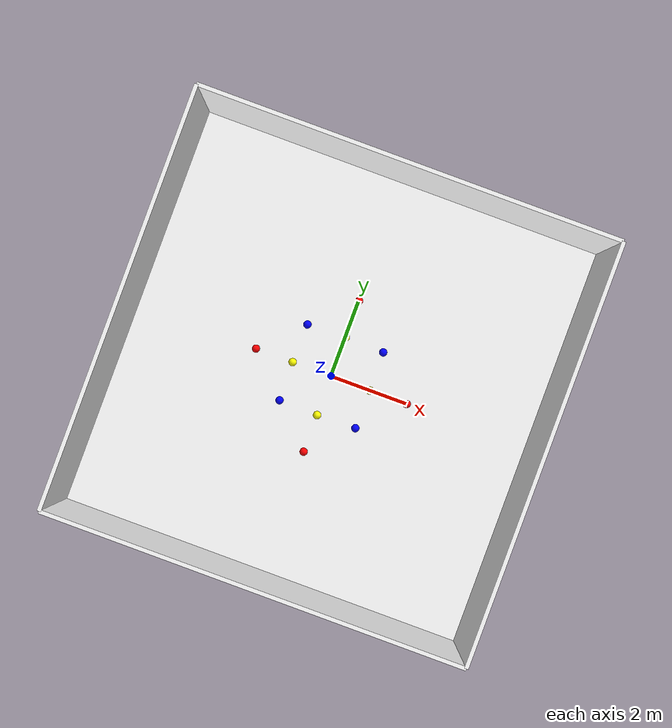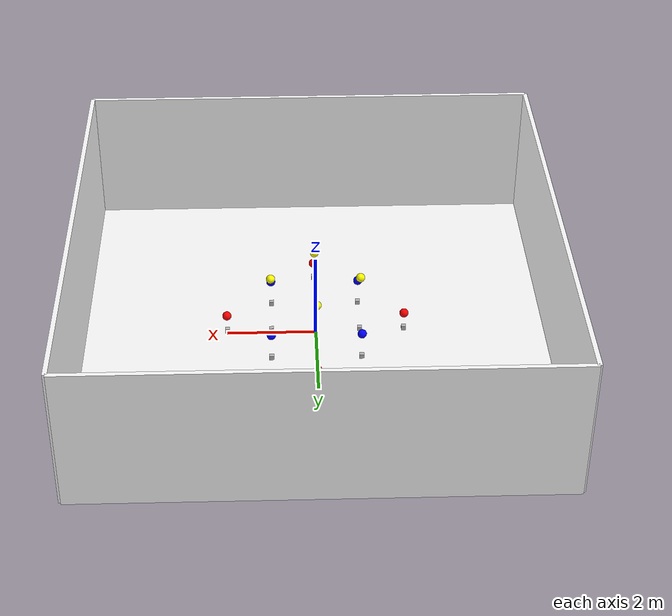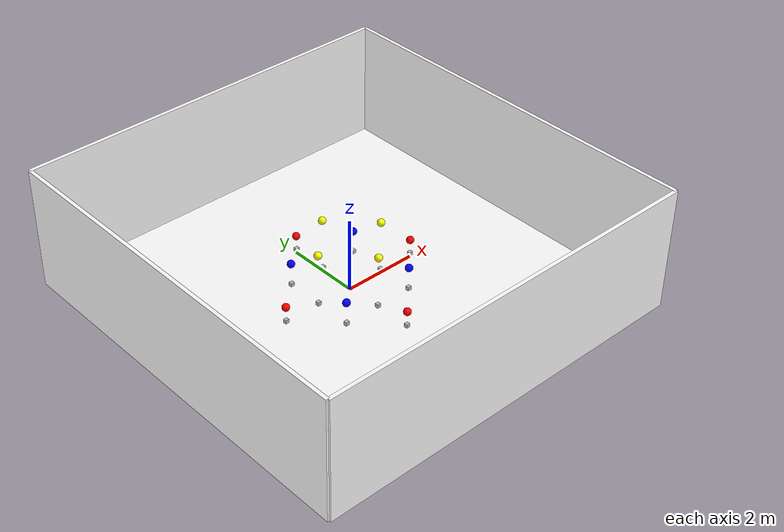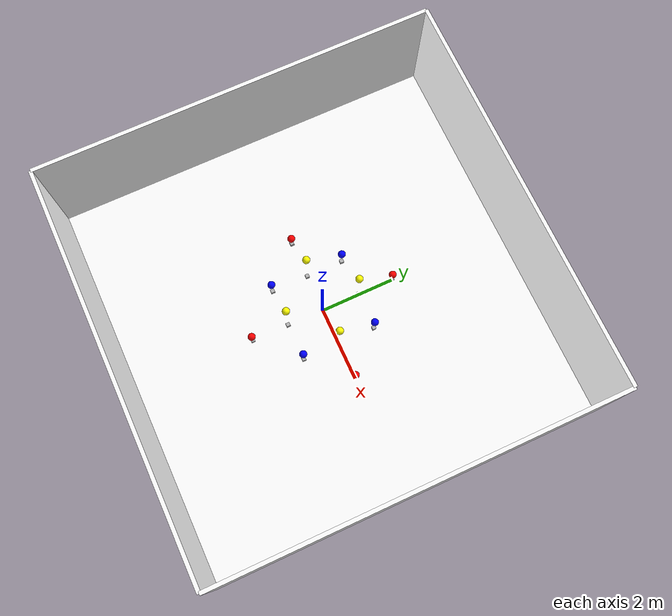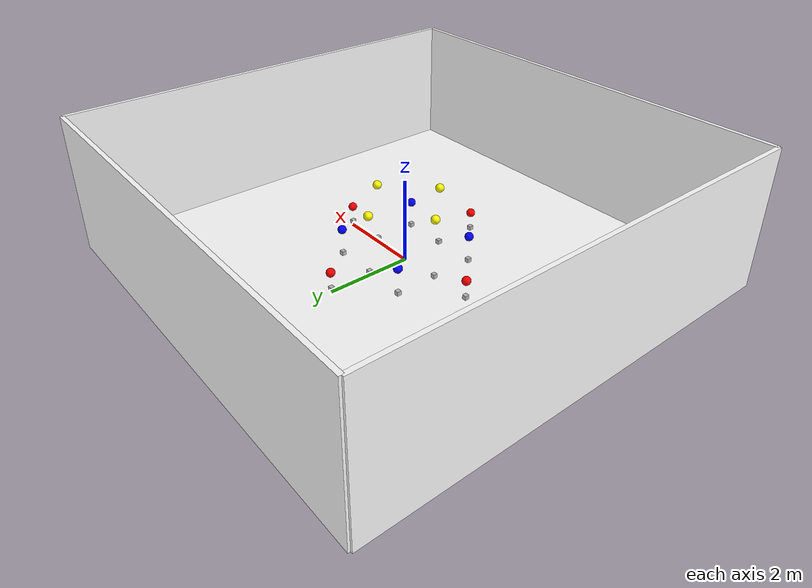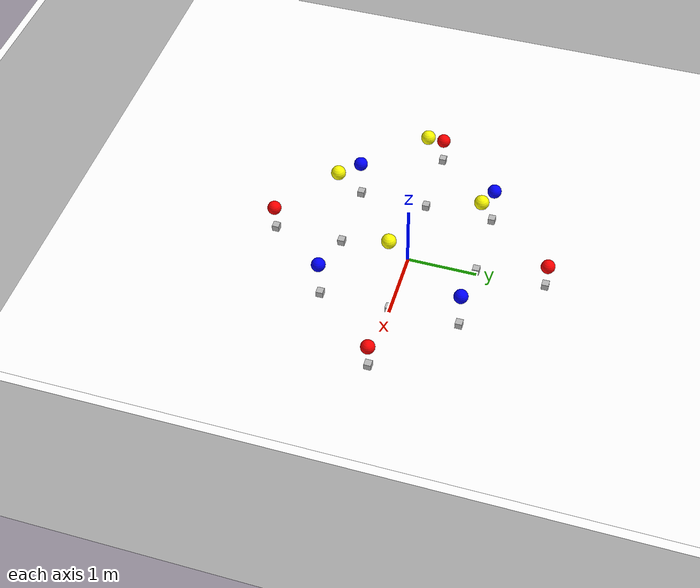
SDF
<sdf version="1.6">
 <world name="easys_world">
  <scene><ambient>0.0 1.0 1.0</ambient><background>0.0 0.7 0.8</background></scene>
  <physics name="1ms" type="ode">
   <max_step_size>0.001</max_step_size>
   <real_time_factor>1.0</real_time_factor>
  </physics>
  <plugin filename="gz-sim-physics-system" name="gz::sim::systems::Physics"/>
  <plugin filename="gz-sim-user-commands-system" name="gz::sim::systems::UserCommands"/>
  <plugin filename="gz-sim-scene-broadcaster-system" name="gz::sim::systems::SceneBroadcaster"/>
  <plugin filename="gz-sim-buoyancy-system" name="gz::sim::systems::Buoyancy">
   <uniform_fluid_density>1000</uniform_fluid_density>
  </plugin>
  <light type="directional" name="sun">
   <pose>0 0 10 0 0 0</pose>
   <diffuse>1 1 1 1</diffuse>
   <specular>0.5 0.5 0.5 1</specular>
   <attenuation>
    <range>1000</range>
    <constant>0.9</constant>
    <linear>0.01</linear>
    <quadratic>0.001</quadratic>
   </attenuation>
   <direction>-0.5 0.1 -0.9</direction>
  </light>
  <model name="ground_plane">
   <static>true</static>
   <link name="link">
    <collision name="collision">
     <geometry><plane><normal>0.0 0.0 1</normal><size>1 1</size></plane></geometry>
    </collision>
   </link>
  </model>
  <include><uri>model://jamstec_pool.sdf</uri><static>true</static></include>
  <include><uri>model://balloons.sdf</uri></include>
 </world>
</sdf>

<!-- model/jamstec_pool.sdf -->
<sdf version="1.6">
  <model name="jamstec_pool">
    <include>
      <uri>model://pool_wall.sdf</uri>
      <static>true</static>
      <pose>5.25 0 0 0 0 1.57</pose>
      <name>pool_wall_n</name>
    </include>
    <include>
      <uri>model://pool_wall.sdf</uri>
      <static>true</static>
      <pose>-5.25 0 0 0 0 1.57</pose>
      <name>pool_wall_s</name>
    </include>
    <include>
      <uri>model://pool_wall.sdf</uri>
      <static>true</static>
      <pose>0 5.25 0 0 0 0</pose>
      <name>pool_wall_e</name>
    </include>
    <include>
      <uri>model://pool_wall.sdf</uri>
      <static>true</static>
      <pose>0 -5.25 0 0 0 0</pose>
      <name>pool_wall_w</name>
    </include>

    <link name="pool_grand_link">
      <pose>0.0 0 -0.05 0.0 0.0 0.0</pose>
      <collision name="wall_collision">
          <geometry>
            <box>
                <size>10.5 10.5 0.1</size>
            </box>
          </geometry>
      </collision>
      <visual name="pool_grand_visual">
        <geometry>
            <box>
                <size>10.5 10.5 0.1</size>
            </box>
        </geometry>
        <material>
          <diffuse>1.0 1.0 1.0</diffuse>
          <specular>1.0 1.0 1.0</specular>
          <pbr>
            <metal>
              <albedo_map>material/pool_grand.png</albedo_map>
              <normal_map>material/pool_grand.png</normal_map>
              <metalness_map>material/pool_grand.png</metalness_map>
              <roughness_map>material/pool_grand.png</roughness_map>
            </metal>
          </pbr>
          <script>
            <uri>material/</uri>
            <name>PoolGrandMaterial</name>
            <scale>1.0 0.1</scale>
          </script>
        </material>
      </visual>
    </link>
  </model>
</sdf>

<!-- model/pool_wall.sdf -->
<sdf version="1.6">
  <model name="pool_wall">
    <!-- weight -->
    <link name="pool_wall_link">
      <pose>0.0 0 1.515 0.0 0.0 0.0</pose>
      <collision name="wall_collision">
          <geometry>
            <box>
                <size>10.5 0.1 3.3</size>
            </box>
          </geometry>
      </collision>
      <visual name="pool_wall_visual">
        <geometry>
            <box>
                <size>10.5 0.1 3.3</size>
            </box>
        </geometry>
        <material>
          <diffuse>1.0 1.0 1.0</diffuse>
          <specular>1.0 1.0 1.0</specular>
          <pbr>
            <metal>
              <albedo_map>material/pool_wall.png</albedo_map>
              <normal_map>material/pool_wall.png</normal_map>
              <metalness_map>material/pool_wall.png</metalness_map>
              <roughness_map>material/pool_wall.png</roughness_map>
            </metal>
          </pbr>
          <script>
            <uri>material/</uri>
            <name>PoolWallMaterial</name>
            <scale>1.0 0.1</scale>
          </script>
        </material>
      </visual>
    </link>
  </model>
</sdf>

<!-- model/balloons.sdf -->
<sdf version="1.6">
  <model name="balloons">
    <!--yellow 1.5m 10point-->
    <include>
      <uri>model://balloon_yellow.sdf</uri>
      <pose>0 -1 0 0 0 0</pose>
      <name>balloon_yellow1</name>
    </include>
    <include>
      <uri>model://balloon_yellow.sdf</uri>
      <pose>0 1 0 0 0 0</pose>
      <name>balloon_yellow2</name>
    </include>
    <include>
      <uri>model://balloon_yellow.sdf</uri>
      <pose>1 0 0 0 0 0</pose>
      <name>balloon_yellow3</name>
    </include>
    <include>
      <uri>model://balloon_yellow.sdf</uri>
      <pose>-1 0 0 0 0 0</pose>
      <name>balloon_yellow4</name>
    </include>

    <!--blue 0.7m -10point-->
    <include>
      <uri>model://balloon_blue.sdf</uri>
      <pose>1 1 0 0 0 0</pose>
      <name>balloon_blue1</name>
    </include>
    <include>
      <uri>model://balloon_blue.sdf</uri>
      <pose>-1 1 0 0 0 0</pose>
      <name>balloon_blue2</name>
    </include>
    <include>
      <uri>model://balloon_blue.sdf</uri>
      <pose>1 -1 0 0 0 0</pose>
      <name>balloon_blue3</name>
    </include>
    <include>
      <uri>model://balloon_blue.sdf</uri>
      <pose>-1 -1 0 0 0 0</pose>
      <name>balloon_blue4</name>
    </include>

    <!--red 0.5m 30point-->
    <include>
      <uri>model://balloon_red.sdf</uri>
      <pose>2 0 0 0 0 0</pose>
      <name>balloon_red1</name>
    </include>
    <include>
      <uri>model://balloon_red.sdf</uri>
      <pose>-2 0 0 0 0 0</pose>
      <name>balloon_red2</name>
    </include>
    <include>
      <uri>model://balloon_red.sdf</uri>
      <pose>0 2 0 0 0 0</pose>
      <name>balloon_red3</name>
    </include>
    <include>
      <uri>model://balloon_red.sdf</uri>
      <pose>0 -2 0 0 0 0</pose>
      <name>balloon_red4</name>
    </include>
  </model>
</sdf>

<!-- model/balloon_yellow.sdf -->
<sdf version="1.6">
  <model name="balloon">
    <!-- balloon -->
    <link name="balloon_link">
      <pose>0.0 0.0 1.5 0.0 0.0 0.0</pose>
      <collision name="collision">
          <geometry>
            <sphere>
              <radius>0.1</radius>
            </sphere>
          </geometry>
      </collision>
      <inertial>
        <mass>0.1</mass>
        <inertia>
            <ixx>1.000000</ixx>
            <ixy>0</ixy>
            <ixz>0</ixz>
            <iyy>1.0</iyy>
            <iyz>0</iyz>
            <izz>1.0</izz>
        </inertia>
      </inertial>
      <visual name="balloon_visual">
        <geometry>
            <sphere>
              <radius>0.1</radius>
            </sphere>
        </geometry>
        <material>
          <ambient>0.9 0.9 0.9 1</ambient>
          <diffuse>1.0 1.0 0.0 1</diffuse>
          <specular>0 0 0 0</specular>
          <emissive>0 0 0 1</emissive>
        </material>
      </visual>
    </link>

    <!-- weight -->
    <link name="weight_link">
      <pose>0.0 0.0 0.1 0.0 0.0 0.0</pose>
      <collision name="collision">
          <geometry>
            <box>
                <size>0.1 0.1 0.1</size>
            </box>
          </geometry>
      </collision>
      <inertial>
        <mass>50.0</mass>
        <inertia>
            <ixx>1.000000</ixx>
            <ixy>0</ixy>
            <ixz>0</ixz>
            <iyy>1.0</iyy>
            <iyz>0</iyz>
            <izz>1.0</izz>
        </inertia>
      </inertial>
      <visual name="weight_visual">
        <geometry>
            <box>
                <size>0.1 0.1 0.1</size>
            </box>
        </geometry>
      </visual>
    </link>

    <!-- balloon-weight joint -->
    <joint name="balloon_joint" type="fixed">
      <parent>weight_link</parent>
      <child>balloon_link</child>
      <pose>0 0 0 0 0 0</pose>
      <axis>
        <xyz>1 0 0</xyz>
        <limit>
            <lower>-1e+12</lower>
            <upper>1e+12</upper>
            <effort>-1</effort>
            <velocity>-1</velocity>
        </limit>
      </axis>
    </joint>
  </model>
</sdf>

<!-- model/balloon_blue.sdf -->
<sdf version="1.6">
  <model name="balloon">
    <!-- balloon -->
    <link name="balloon_link">
      <pose>0.0 0.0 0.7 0.0 0.0 0.0</pose>
      <collision name="collision">
          <geometry>
            <sphere>
              <radius>0.1</radius>
            </sphere>
          </geometry>
      </collision>
      <inertial>
        <mass>0.1</mass>
        <inertia>
            <ixx>1.000000</ixx>
            <ixy>0</ixy>
            <ixz>0</ixz>
            <iyy>1.0</iyy>
            <iyz>0</iyz>
            <izz>1.0</izz>
        </inertia>
      </inertial>
      <visual name="balloon_visual">
        <geometry>
            <sphere>
              <radius>0.1</radius>
            </sphere>
        </geometry>
        <material>
          <ambient>0.9 0.9 0.9 1</ambient>
          <diffuse>0.0 0.0 1.0 1</diffuse>
          <specular>0 0 0 0</specular>
          <emissive>0 0 0 1</emissive>
        </material>
      </visual>
    </link>

    <!-- weight -->
    <link name="weight_link">
      <pose>0.0 0.0 0.1 0.0 0.0 0.0</pose>
      <collision name="collision">
          <geometry>
            <box>
                <size>0.1 0.1 0.1</size>
            </box>
          </geometry>
      </collision>
      <inertial>
        <mass>10.0</mass>
        <inertia>
            <ixx>1.000000</ixx>
            <ixy>0</ixy>
            <ixz>0</ixz>
            <iyy>1.0</iyy>
            <iyz>0</iyz>
            <izz>1.0</izz>
        </inertia>
      </inertial>
      <visual name="weight_visual">
        <geometry>
            <box>
                <size>0.1 0.1 0.1</size>
            </box>
        </geometry>
      </visual>
    </link>

    <!-- balloon-weight joint -->
    <joint name="balloon_joint" type="fixed">
      <parent>weight_link</parent>
      <child>balloon_link</child>
      <pose>0 0 0 0 0 0</pose>
      <axis>
        <xyz>1 0 0</xyz>
        <limit>
            <lower>-1e+12</lower>
            <upper>1e+12</upper>
            <effort>-1</effort>
            <velocity>-1</velocity>
        </limit>
      </axis>
    </joint>
  </model>
</sdf>

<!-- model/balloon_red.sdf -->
<sdf version="1.6">
  <model name="balloon">
    <!-- balloon -->
    <link name="balloon_link">
      <pose>0.0 0.0 0.5 0.0 0.0 0.0</pose>
      <collision name="collision">
          <geometry>
            <sphere>
              <radius>0.1</radius>
            </sphere>
          </geometry>
      </collision>
      <inertial>
        <mass>0.1</mass>
        <inertia>
            <ixx>1.000000</ixx>
            <ixy>0</ixy>
            <ixz>0</ixz>
            <iyy>1.0</iyy>
            <iyz>0</iyz>
            <izz>1.0</izz>
        </inertia>
      </inertial>
      <visual name="balloon_visual">
        <geometry>
            <sphere>
              <radius>0.1</radius>
            </sphere>
        </geometry>
        <material>
          <ambient>0.9 0.9 0.9 1</ambient>
          <diffuse>1.0 0.0 0.0 1</diffuse>
          <specular>0 0 0 0</specular>
          <emissive>0 0 0 1</emissive>
        </material>
      </visual>
    </link>

    <!-- weight -->
    <link name="weight_link">
      <pose>0.0 0.0 0.1 0.0 0.0 0.0</pose>
      <collision name="collision">
          <geometry>
            <box>
                <size>0.1 0.1 0.1</size>
            </box>
          </geometry>
      </collision>
      <inertial>
        <mass>10.0</mass>
        <inertia>
            <ixx>1.000000</ixx>
            <ixy>0</ixy>
            <ixz>0</ixz>
            <iyy>1.0</iyy>
            <iyz>0</iyz>
            <izz>1.0</izz>
        </inertia>
      </inertial>
      <visual name="weight_visual">
        <geometry>
            <box>
                <size>0.1 0.1 0.1</size>
            </box>
        </geometry>
      </visual>
    </link>

    <!-- balloon-weight joint -->
    <joint name="balloon_joint" type="fixed">
      <parent>weight_link</parent>
      <child>balloon_link</child>
      <pose>0 0 0 0 0 0</pose>
      <axis>
        <xyz>1 0 0</xyz>
        <limit>
            <lower>-1e+12</lower>
            <upper>1e+12</upper>
            <effort>-1</effort>
            <velocity>-1</velocity>
        </limit>
      </axis>
    </joint>
  </model>
</sdf>
